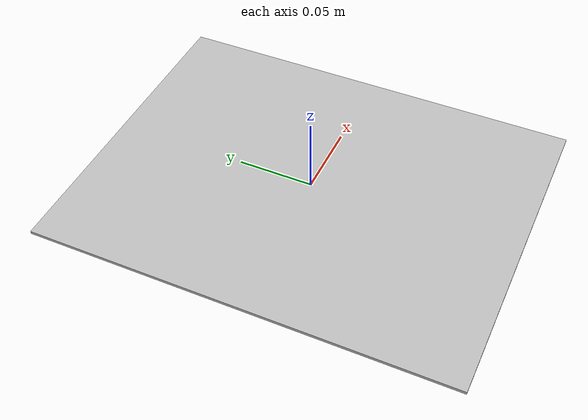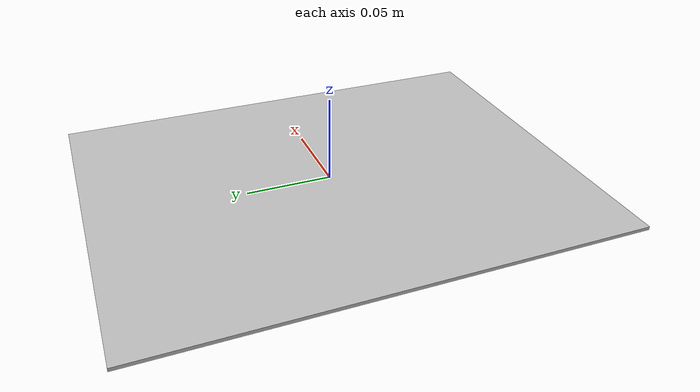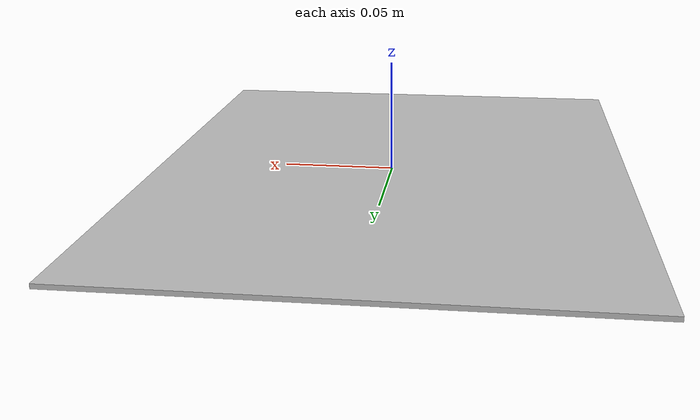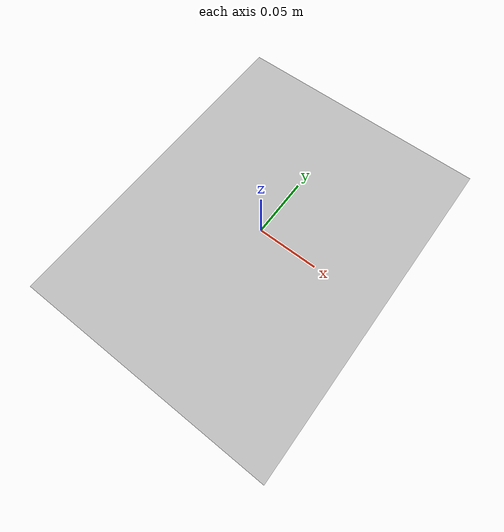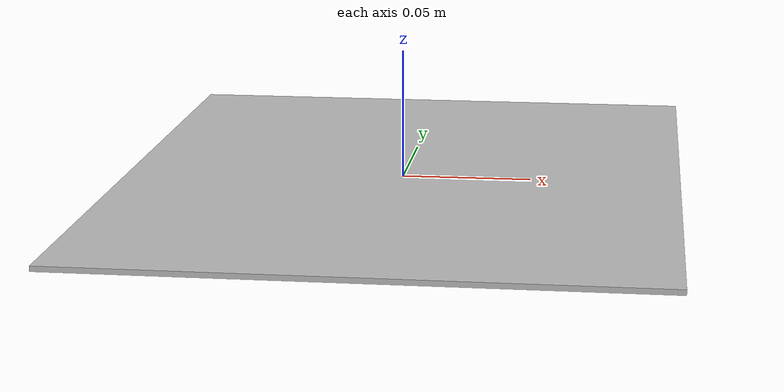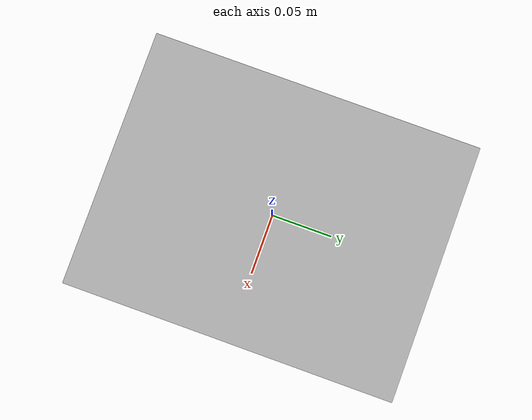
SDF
<?xml version="1.0" ?>
<sdf version="1.6">
  <model name="aruco">
    <static>false</static>

    <link name="link">

      <inertial>
        <mass>0.01</mass>
        <inertia>
          <ixx>1e-6</ixx>
          <iyy>1e-6</iyy>
          <izz>1e-6</izz>
        </inertia>
      </inertial>

      <collision name="collision">
        <geometry>
          <box>
            <size>0.216 0.279 0.002</size>
          </box>
        </geometry>
      </collision>

      <visual name="visual">
        <geometry>
          <box>
            <size>0.216 0.279 0.002</size>
          </box>
        </geometry>

        <material>
          <script>
            <uri>model://aruco/materials/scripts</uri>
            <uri>model://aruco/materials/textures</uri>
            <name>aruco/texture</name>
          </script>
        </material>

      </visual>

    </link>
  </model>
</sdf>
